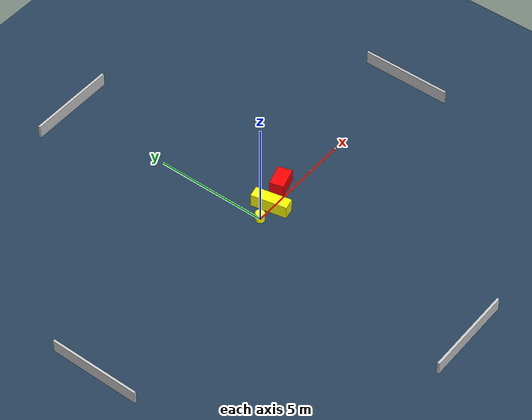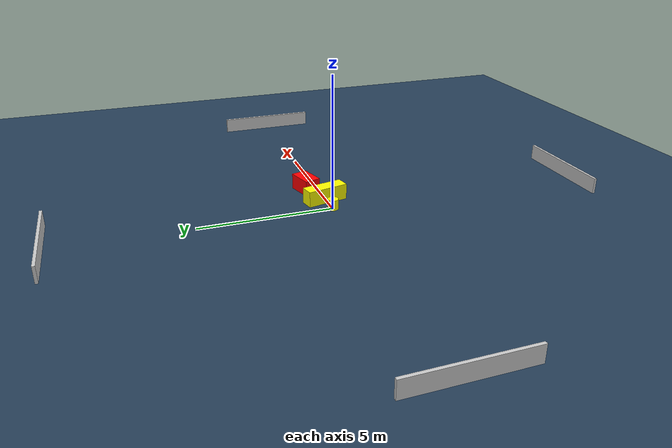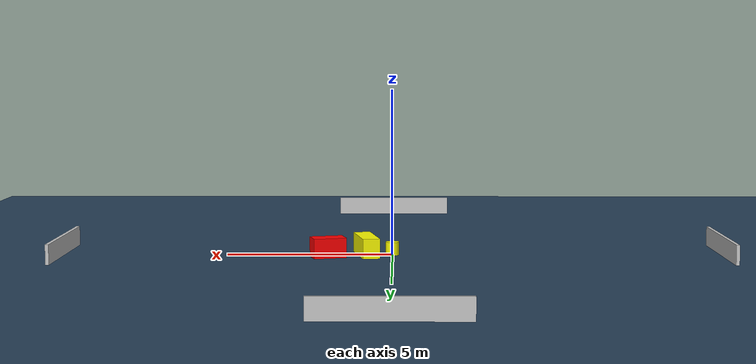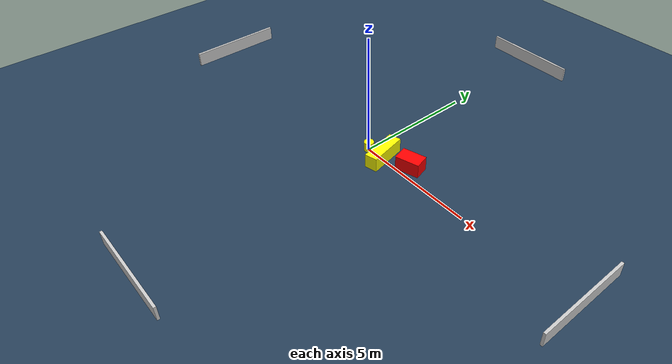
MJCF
<?xml version="1.0" ?>
<mujoco model="generated_environment">
  <option timestep="0.01" integrator="RK4" cone="elliptic"/>
  <default>
    <geom density="1"/>
  </default>
  <asset>
    <texture builtin="gradient" height="3072" name="skybox" rgb1="0.3 0.5 0.7" rgb2="0 0 0" type="skybox" width="512"/>
    <texture builtin="checker" height="300" name="groundplane" rgb1="0.2 0.3 0.4" rgb2="0.1 0.2 0.3" type="2d" width="300"/>
    <material name="groundplane" reflectance="0.2" texrepeat="5 5" texture="groundplane"/>
  </asset>
  <worldbody>
    <light dir="0 0 -1" directional="true" pos="0 0 1.5"/>
    <geom condim="3" friction="0.5 0.005 0.001" material="groundplane" name="floor" pos="0 0 0" size="0 0 0.05" type="plane"/>
    <body name="walls">
      <geom name="wall_1" condim="4" pos="-10.0 0.0 0.3" rgba="0.800000011920929 0.800000011920929 0.800000011920929 1.0" size="0.05 2.0 0.3" type="box"/>
      <geom name="wall_2" condim="4" pos="10.0 0.0 0.3" rgba="0.800000011920929 0.800000011920929 0.800000011920929 1.0" size="0.05 2.0 0.3" type="box"/>
      <geom name="wall_3" condim="4" pos="0.0 -10.0 0.3" rgba="0.800000011920929 0.800000011920929 0.800000011920929 1.0" size="2.0 0.05 0.3" type="box"/>
      <geom name="wall_4" condim="4" pos="0.0 10.0 0.3" rgba="0.800000011920929 0.800000011920929 0.800000011920929 1.0" size="2.0 0.05 0.3" type="box"/>
    </body>
    <body name="robot">
      <joint name="joint_x" type="slide" pos="0 0 0" axis="1 0 0"/>
      <joint name="joint_y" type="slide" pos="0 0 0" axis="0 1 0"/>
      <geom name="robot" type="cylinder" pos="0.0 0.0 0.2" size="0.2 0.2 0.0" mass="5.0" friction="1.0 0.005 0.0001" condim="4" rgba="1.0 1.0 0.0 1.0"/>
    </body>
    <body name="obstacle_1_movable">
      <geom name="obstacle_1_movable" condim="4" pos="0.7829032504099076 0.0519487976154389 0.3" euler="0 0 101.94833976202841" friction="0.0 0.005 0.001" rgba="1.0 1.0 0.0 1.0" size="0.7934942040860193 0.2587388799021 0.3" type="box" mass="0.1"/>
      <joint type="free"/>
    </body>
    <body name="obstacle_2_static">
      <geom name="obstacle_2_static" condim="4" pos="1.9246280560338778 0.4458290884468995 0.3" euler="0 0 16.091566255441276" friction="0.0 0.005 0.001" rgba="1.0 0.0 0.0 1.0" size="0.4965508470212148 0.3087687259311418 0.3" type="box"/>
    </body>
  </worldbody>
  <actuator>
    <motor name="actuator_x" joint="joint_x" gear="1" ctrlrange="-1 1"/>
    <motor name="actuator_y" joint="joint_y" gear="1" ctrlrange="-1 1"/>
  </actuator>
</mujoco>
